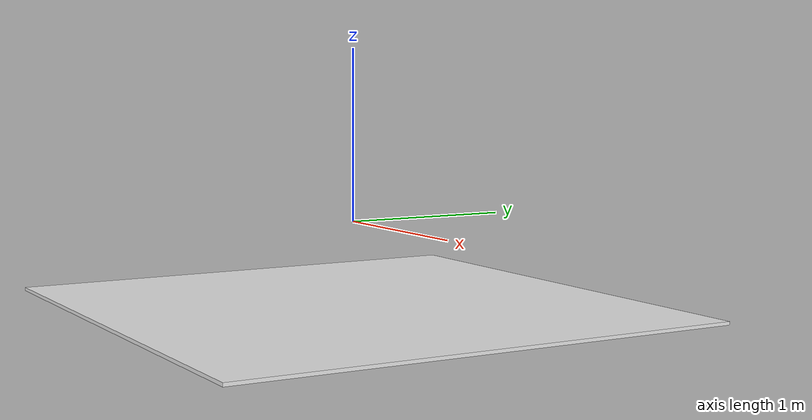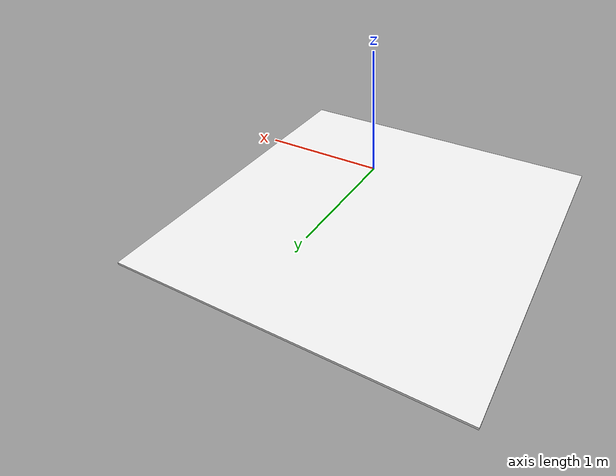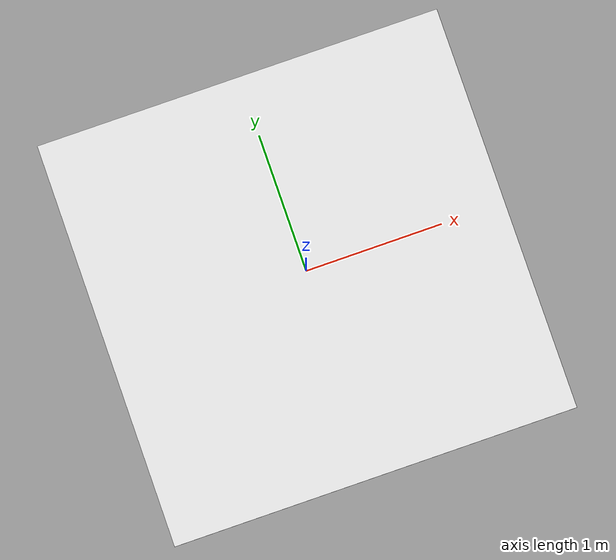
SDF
<?xml version='1.0'?>
<sdf version='1.6'>
  <model name='FLOOR_RUBBER'>
  <link name="world"/>
  <joint name="fixed" type="fixed">
    <parent link="world"/>
    <child link="link_0"/>
  </joint>
    <link name='link_0'>
      <pose frame=''>0 0 0 0 -0 0</pose>
      <inertial>
        <mass>1</mass>
        <inertia>
          <ixx>0.166667</ixx>
          <ixy>0</ixy>
          <ixz>0</ixz>
          <iyy>0.166667</iyy>
          <iyz>0</iyz>
          <izz>0.166667</izz>
        </inertia>
        <pose frame=''>0 0 0 0 -0 0</pose>
      </inertial>
      <self_collide>0</self_collide>
      <kinematic>0</kinematic>
      <gravity>1</gravity>
      <visual name='visual'>
        <pose frame=''>0 0 -0.49 0 -0 0</pose>
        <geometry>
          <box>
            <size>3 3 0.02</size>
          </box>
        </geometry>
        <material>
          <lighting>1</lighting>
          <script>
            <uri>file://media/materials/scripts/gazebo.material</uri>
            <name>Gazebo/White</name>
          </script>
          <ambient>0.1 0.2 0.1 1</ambient>
          <diffuse>1 1 1 1</diffuse>
          <specular>1 1 1 1</specular>
          <emissive>0 0 0 1</emissive>
          <shader type='vertex'>
            <normal_map>__default__</normal_map>
          </shader>
        </material>
        <transparency>0</transparency>
        <cast_shadows>1</cast_shadows>
      </visual>
      <collision name='collision'>
        <laser_retro>0</laser_retro>
        <max_contacts>10</max_contacts>
        <pose frame=''>0 0 -0.49 0 -0 0</pose>
        <geometry>
          <box>
            <size>3 3 0.02</size>
          </box>
        </geometry>
        <surface>
          <friction>
            <ode>
              <mu>1</mu>
              <mu2>1</mu2>
              <fdir1>0 0 0</fdir1>
              <slip1>0</slip1>
              <slip2>0</slip2>
            </ode>
            <torsional>
              <coefficient>1</coefficient>
              <patch_radius>0</patch_radius>
              <surface_radius>0</surface_radius>
              <use_patch_radius>1</use_patch_radius>
              <ode>
                <slip>0</slip>
              </ode>
            </torsional>
          </friction>
          <bounce>
            <restitution_coefficient>0</restitution_coefficient>
            <threshold>1e+06</threshold>
          </bounce>
          <contact>
            <collide_without_contact>0</collide_without_contact>
            <collide_without_contact_bitmask>1</collide_without_contact_bitmask>
            <collide_bitmask>1</collide_bitmask>
            <ode>
              <soft_cfm>0</soft_cfm>
              <soft_erp>0.2</soft_erp>
              <kp>220000</kp>
              <kd>1</kd>
              <max_vel>0.01</max_vel>
              <min_depth>0</min_depth>
            </ode>
            <bullet>
              <split_impulse>1</split_impulse>
              <split_impulse_penetration_threshold>-0.01</split_impulse_penetration_threshold>
              <soft_cfm>0</soft_cfm>
              <soft_erp>0.2</soft_erp>
              <kp>220000</kp>
              <kd>1</kd>
            </bullet>
          </contact>
        </surface>
      </collision>
    </link>
    <static>0</static>
    <allow_auto_disable>1</allow_auto_disable>
  </model>
</sdf>
